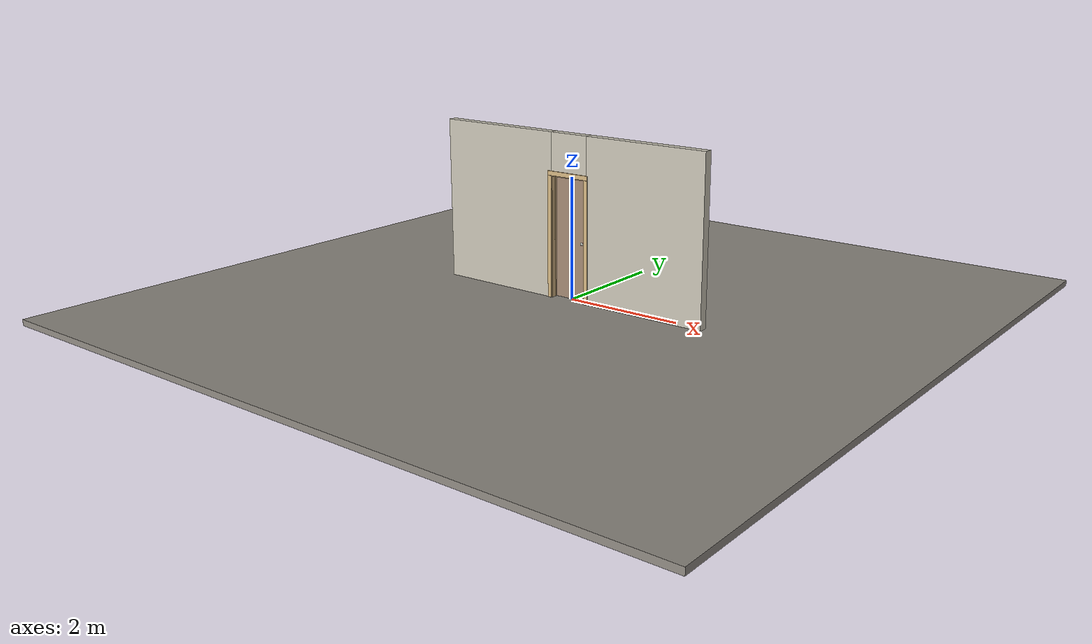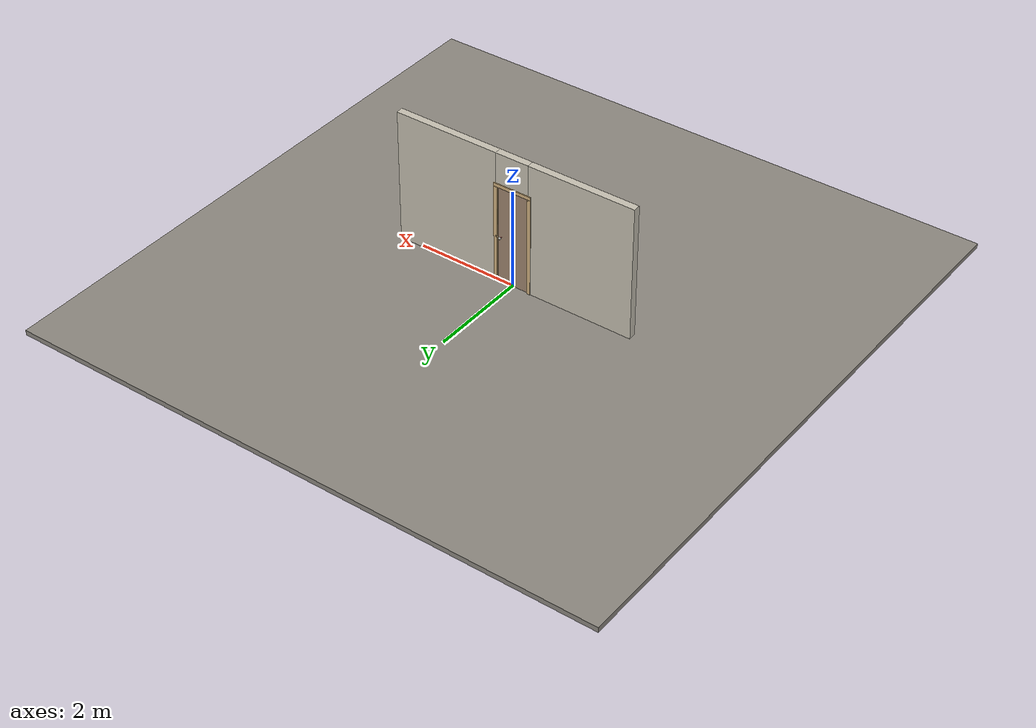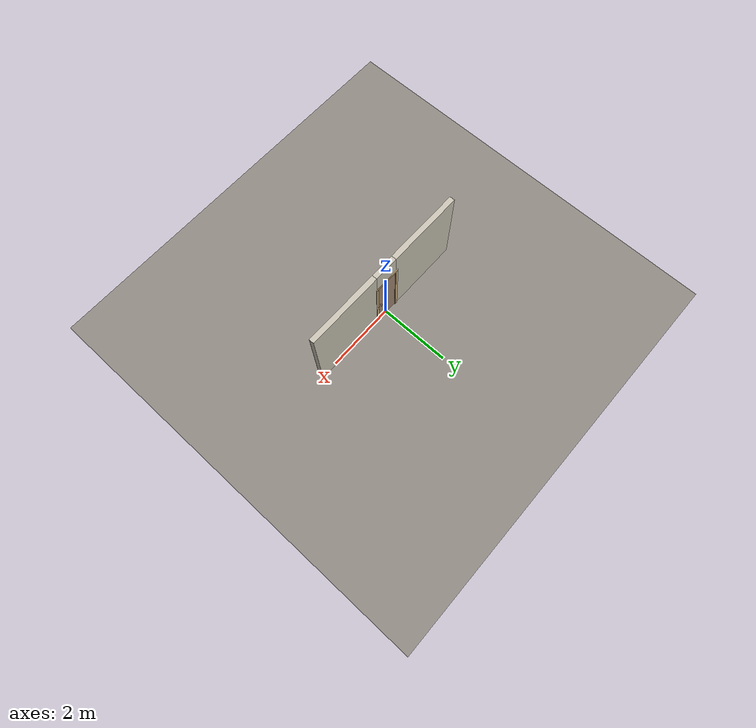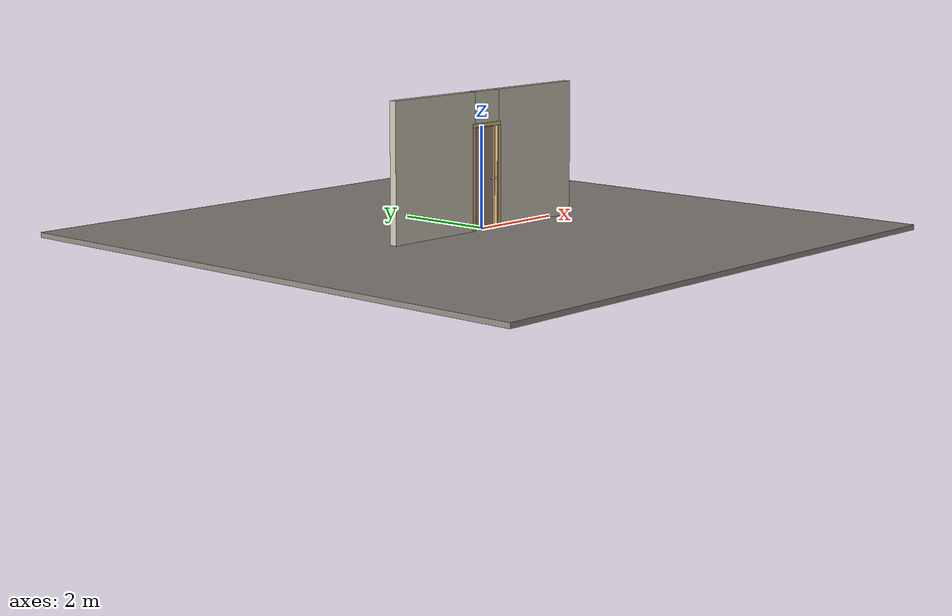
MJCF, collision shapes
<?xml version="1.0" ?>
<mujoco model="db0881_swing_single_full">
  <compiler angle="radian" meshdir="../../hardware" texturedir="../../textures" autolimits="true" inertiafromgeom="false"/>
  <option timestep="0.002" integrator="implicitfast" cone="elliptic" impratio="10" noslip_iterations="3">
    <flag multiccd="enable"/>
  </option>
  <size memory="16M"/>
  <default>
    <geom condim="4" solref="0.005 1" solimp="0.95 0.99 0.001"/>
    <joint solreflimit="0.005 1" solimplimit="0.95 0.99 0.001"/>
    <tendon solreflimit="0.005 1"/>
    <equality solref="0.002 1"/>
  </default>
  <visual>
    <headlight ambient="0.4 0.4 0.4" diffuse="0.7 0.7 0.7" specular="0.2 0.2 0.2"/>
    <quality shadowsize="4096"/>
    <map znear="0.01" zfar="60"/>
  </visual>
  <asset>
    <mesh name="hinge_e53abd72ad" file="hinge_e53abd72ad.obj"/>
    <mesh name="hinge_jamb_c17a76d68c" file="hinge_jamb_c17a76d68c.obj"/>
    <mesh name="knob_0ccd68d739" file="knob_0ccd68d739.obj"/>
    <material name="mat_floor" rgba="0.55 0.53 0.5 1" specular="0.2" shininess="0.15" reflectance="0"/>
    <material name="mat_wall" rgba="0.78 0.76 0.7 1" specular="0.2" shininess="0.1" reflectance="0"/>
    <material name="mat_leaf" rgba="0.625 0.525 0.44 1" specular="0.2" shininess="0.45" reflectance="0"/>
    <material name="mat_leaf_louver" rgba="0.531 0.446 0.374 1" specular="0.2" shininess="0.4" reflectance="0"/>
    <material name="mat_hinge" rgba="0.65 0.66 0.68 1" specular="0.74" shininess="0.5" reflectance="0.36"/>
    <material name="mat_op_hpl" rgba="0.75 0.75 0.72 1" specular="0.2" shininess="0.65" reflectance="0"/>
    <material name="mat_trim" rgba="0.85 0.66 0.3 1" specular="0.8" shininess="0.75" reflectance="0.4"/>
    <material name="mat_bolt" rgba="0.85 0.66 0.3 1" specular="0.8" shininess="0.75" reflectance="0.4"/>
    <material name="mat_frame" rgba="0.82 0.7 0.5 1" specular="0.2" shininess="0.45" reflectance="0"/>
    <texture name="skybox" type="skybox" builtin="gradient" rgb1="0.6 0.7 0.85" rgb2="0.9 0.92 0.95" width="256" height="256"/>
  </asset>
  <worldbody>
    <light name="sun" pos="1.5 -2.5 4" dir="-0.3 0.5 -0.8" directional="true" diffuse="0.8 0.8 0.8" specular="0.3 0.3 0.3" castshadow="true"/>
    <light name="fill" pos="-1.5 2.5 3" dir="0.3 -0.5 -0.7" directional="true" diffuse="0.35 0.35 0.4" castshadow="false"/>
    <camera name="robot_view" pos="0 -2.543625 1.698475" xyaxes="1 0 0 0 0.26963 0.962964" fovy="52"/>
    <camera name="far_view" pos="0 2.452625 1.698475" xyaxes="-1 0 0 0 -0.26963 0.962964" fovy="52"/>
    <camera name="iso" pos="1.898575 -2.143925 2.098175" xyaxes="0.741536 0.670913 0 -0.242917 0.268487 0.932151" fovy="46"/>
    <camera name="detail_handle" pos="0.424 -0.86625 1.245" xyaxes="0.97561 0.219512 0 -0.070934 0.315262 0.94635" fovy="38"/>
    <geom name="floor" type="box" size="6 6 0.05" pos="0 0 -0.05" material="mat_floor" group="0" contype="1" conaffinity="1" friction="0.8 0.005 0.0001" density="2400"/>
    <geom name="wall_left" type="box" size="1.086 0.0725 1.35" pos="-1.414 -0.0455 1.35" material="mat_wall" group="0" contype="1" conaffinity="1" friction="0.6 0.005 0.0001" density="800"/>
    <geom name="wall_right" type="box" size="1.071 0.0725 1.35" pos="1.429 -0.0455 1.35" material="mat_wall" group="0" contype="1" conaffinity="1" friction="0.6 0.005 0.0001" density="800"/>
    <geom name="wall_header" type="box" size="0.343 0.0725 0.3265" pos="0.015 -0.0455 2.3735" material="mat_wall" group="0" contype="1" conaffinity="1" friction="0.6 0.005 0.0001" density="800"/>
    <geom name="hinge_0_jamb" type="mesh" mesh="hinge_jamb_c17a76d68c" pos="-0.306 0.027 0.259" quat="0 1 0 0" material="mat_hinge" group="1" contype="0" conaffinity="0" density="7850"/>
    <geom name="hinge_1_jamb" type="mesh" mesh="hinge_jamb_c17a76d68c" pos="-0.306 0.027 1.0015" quat="0 1 0 0" material="mat_hinge" group="1" contype="0" conaffinity="0" density="7850"/>
    <geom name="hinge_2_jamb" type="mesh" mesh="hinge_jamb_c17a76d68c" pos="-0.306 0.027 1.814" quat="0 1 0 0" material="mat_hinge" group="1" contype="0" conaffinity="0" density="7850"/>
    <geom name="jamb_hinge" type="box" size="0.0095 0.0725 0.999" pos="-0.3185 -0.0455 0.999" material="mat_frame" group="0" contype="1" conaffinity="1" friction="0.6 0.005 0.0001" density="400"/>
    <geom name="strike_965_wall_n" type="box" size="0.0245 0.055075 0.0167" pos="0.3335 -0.062925 0.965" material="mat_frame" group="0" contype="1" conaffinity="1" friction="0.6 0.005 0.0001" density="400"/>
    <geom name="strike_965_wall_p" type="box" size="0.0245 0.008 0.0167" pos="0.3335 0.01585 0.965" material="mat_frame" group="0" contype="1" conaffinity="1" friction="0.6 0.005 0.0001" density="400"/>
    <geom name="strike_965_ramp" type="box" size="0.0245 0.01649 0.0167" pos="0.338136 0.028673 0.965" quat="0.977148 0 0 -0.212558" material="mat_frame" group="0" contype="1" conaffinity="1" friction="0.12 0.005 0.0001" density="400"/>
    <geom name="strike_965_back" type="box" size="0.01615 0.00785 0.0167" pos="0.34185 0 0.965" material="mat_frame" group="0" contype="1" conaffinity="1" friction="0.6 0.005 0.0001" density="400"/>
    <geom name="jamb_strike_0" type="box" size="0.0245 0.0725 0.47415" pos="0.3335 -0.0455 0.47415" material="mat_frame" group="0" contype="1" conaffinity="1" friction="0.6 0.005 0.0001" density="400"/>
    <geom name="jamb_strike_1" type="box" size="0.0245 0.0725 0.50815" pos="0.3335 -0.0455 1.48985" material="mat_frame" group="0" contype="1" conaffinity="1" friction="0.6 0.005 0.0001" density="400"/>
    <geom name="jamb_head" type="box" size="0.343 0.0725 0.0095" pos="0.015 -0.0455 2.0075" material="mat_frame" group="0" contype="1" conaffinity="1" friction="0.6 0.005 0.0001" density="400"/>
    <geom name="head_stud" type="box" size="0.343 0.0725 0.015" pos="0.015 -0.0455 2.032" material="mat_wall" group="0" contype="1" conaffinity="1" friction="0.6 0.005 0.0001" density="500"/>
    <geom name="stop_hinge" type="box" size="0.0055 0.016 0.999" pos="-0.3035 -0.0365 0.999" material="mat_frame" group="0" contype="1" conaffinity="1" friction="0.6 0.005 0.0001" density="400"/>
    <geom name="stop_strike" type="box" size="0.0055 0.016 0.999" pos="0.3035 -0.0365 0.999" material="mat_frame" group="0" contype="1" conaffinity="1" friction="0.6 0.005 0.0001" density="400"/>
    <geom name="stop_head" type="box" size="0.309 0.016 0.0055" pos="0 -0.0365 1.9925" material="mat_frame" group="0" contype="1" conaffinity="1" friction="0.6 0.005 0.0001" density="400"/>
    <geom name="casing_l_n" type="box" size="0.035 0.008 1.0085" pos="-0.358 -0.126 0.999" material="mat_frame" group="2" contype="0" conaffinity="0" density="400"/>
    <geom name="casing_r_n" type="box" size="0.035 0.008 1.0085" pos="0.358 -0.126 0.999" material="mat_frame" group="2" contype="0" conaffinity="0" density="400"/>
    <geom name="casing_h_n" type="box" size="0.393 0.008 0.035" pos="0 -0.126 2.047" material="mat_frame" group="2" contype="0" conaffinity="0" density="400"/>
    <geom name="casing_l_p" type="box" size="0.035 0.008 1.0085" pos="-0.358 0.035 0.999" material="mat_frame" group="2" contype="0" conaffinity="0" density="400"/>
    <geom name="casing_r_p" type="box" size="0.035 0.008 1.0085" pos="0.358 0.035 0.999" material="mat_frame" group="2" contype="0" conaffinity="0" density="400"/>
    <geom name="casing_h_p" type="box" size="0.393 0.008 0.035" pos="0 0.035 2.047" material="mat_frame" group="2" contype="0" conaffinity="0" density="400"/>
    <site name="approach_point" pos="0 -1.5 0" quat="1 0 0 0" size="0.05" rgba="0.2 0.9 0.2 0.5" group="4"/>
    <site name="goal_point" pos="0 1.5 0" quat="1 0 0 0" size="0.05" rgba="0.2 0.9 0.2 0.5" group="4"/>
    <site name="door_plane_center" pos="0 0 0.999" quat="1 0 0 0" size="0.02" rgba="0.2 0.9 0.2 0.5" group="4"/>
    <body name="leaf" pos="-0.309 0 0">
      <inertial pos="0.302825 0.000264 1.001895" mass="24.70134" quat="0.500516 0.499267 -0.500723 0.499492" diaginertia="0.796413331 8.142373528 8.931950058"/>
      <joint name="leaf_hinge" type="hinge" axis="0 0 1" pos="0.003 0.027 0" limited="true" range="0 1.745329" damping="0.099636" frictionloss="0.334629" armature="0.02"/>
      <geom name="leaf_slab" type="box" size="0.305 0.02 0.9925" pos="0.308 0 1.0015" material="mat_leaf" group="0" contype="1" conaffinity="1" friction="0.35 0.005 0.0001" density="1"/>
      <geom name="leaf_louver_0" type="box" size="0.215 0.002 0.026527" pos="0.308 0 0.252614" quat="0.953717 0.300706 0 0" material="mat_leaf_louver" group="1" contype="0" conaffinity="0" density="1"/>
      <geom name="leaf_louver_1" type="box" size="0.215 0.002 0.026527" pos="0.308 0 0.303141" quat="0.953717 0.300706 0 0" material="mat_leaf_louver" group="1" contype="0" conaffinity="0" density="1"/>
      <geom name="leaf_louver_2" type="box" size="0.215 0.002 0.026527" pos="0.308 0 0.353668" quat="0.953717 0.300706 0 0" material="mat_leaf_louver" group="1" contype="0" conaffinity="0" density="1"/>
      <geom name="leaf_louver_3" type="box" size="0.215 0.002 0.026527" pos="0.308 0 0.404195" quat="0.953717 0.300706 0 0" material="mat_leaf_louver" group="1" contype="0" conaffinity="0" density="1"/>
      <geom name="leaf_louver_4" type="box" size="0.215 0.002 0.026527" pos="0.308 0 0.454723" quat="0.953717 0.300706 0 0" material="mat_leaf_louver" group="1" contype="0" conaffinity="0" density="1"/>
      <geom name="leaf_louver_5" type="box" size="0.215 0.002 0.026527" pos="0.308 0 0.50525" quat="0.953717 0.300706 0 0" material="mat_leaf_louver" group="1" contype="0" conaffinity="0" density="1"/>
      <geom name="leaf_louver_6" type="box" size="0.215 0.002 0.026527" pos="0.308 0 0.555777" quat="0.953717 0.300706 0 0" material="mat_leaf_louver" group="1" contype="0" conaffinity="0" density="1"/>
      <geom name="leaf_louver_7" type="box" size="0.215 0.002 0.026527" pos="0.308 0 0.606305" quat="0.953717 0.300706 0 0" material="mat_leaf_louver" group="1" contype="0" conaffinity="0" density="1"/>
      <geom name="leaf_louver_8" type="box" size="0.215 0.002 0.026527" pos="0.308 0 0.656832" quat="0.953717 0.300706 0 0" material="mat_leaf_louver" group="1" contype="0" conaffinity="0" density="1"/>
      <geom name="leaf_louver_9" type="box" size="0.215 0.002 0.026527" pos="0.308 0 0.707359" quat="0.953717 0.300706 0 0" material="mat_leaf_louver" group="1" contype="0" conaffinity="0" density="1"/>
      <geom name="leaf_louver_10" type="box" size="0.215 0.002 0.026527" pos="0.308 0 0.757886" quat="0.953717 0.300706 0 0" material="mat_leaf_louver" group="1" contype="0" conaffinity="0" density="1"/>
      <geom name="leaf_louver_11" type="box" size="0.215 0.002 0.026527" pos="0.308 0 0.808414" quat="0.953717 0.300706 0 0" material="mat_leaf_louver" group="1" contype="0" conaffinity="0" density="1"/>
      <geom name="leaf_louver_12" type="box" size="0.215 0.002 0.026527" pos="0.308 0 0.858941" quat="0.953717 0.300706 0 0" material="mat_leaf_louver" group="1" contype="0" conaffinity="0" density="1"/>
      <geom name="leaf_louver_13" type="box" size="0.215 0.002 0.026527" pos="0.308 0 0.909468" quat="0.953717 0.300706 0 0" material="mat_leaf_louver" group="1" contype="0" conaffinity="0" density="1"/>
      <geom name="leaf_louver_14" type="box" size="0.215 0.002 0.026527" pos="0.308 0 0.959995" quat="0.953717 0.300706 0 0" material="mat_leaf_louver" group="1" contype="0" conaffinity="0" density="1"/>
      <geom name="leaf_louver_15" type="box" size="0.215 0.002 0.026527" pos="0.308 0 1.010523" quat="0.953717 0.300706 0 0" material="mat_leaf_louver" group="1" contype="0" conaffinity="0" density="1"/>
      <geom name="leaf_louver_16" type="box" size="0.215 0.002 0.026527" pos="0.308 0 1.06105" quat="0.953717 0.300706 0 0" material="mat_leaf_louver" group="1" contype="0" conaffinity="0" density="1"/>
      <geom name="leaf_louver_17" type="box" size="0.215 0.002 0.026527" pos="0.308 0 1.111577" quat="0.953717 0.300706 0 0" material="mat_leaf_louver" group="1" contype="0" conaffinity="0" density="1"/>
      <geom name="leaf_louver_18" type="box" size="0.215 0.002 0.026527" pos="0.308 0 1.162105" quat="0.953717 0.300706 0 0" material="mat_leaf_louver" group="1" contype="0" conaffinity="0" density="1"/>
      <geom name="leaf_louver_19" type="box" size="0.215 0.002 0.026527" pos="0.308 0 1.212632" quat="0.953717 0.300706 0 0" material="mat_leaf_louver" group="1" contype="0" conaffinity="0" density="1"/>
      <geom name="leaf_louver_20" type="box" size="0.215 0.002 0.026527" pos="0.308 0 1.263159" quat="0.953717 0.300706 0 0" material="mat_leaf_louver" group="1" contype="0" conaffinity="0" density="1"/>
      <geom name="leaf_louver_21" type="box" size="0.215 0.002 0.026527" pos="0.308 0 1.313686" quat="0.953717 0.300706 0 0" material="mat_leaf_louver" group="1" contype="0" conaffinity="0" density="1"/>
      <geom name="leaf_louver_22" type="box" size="0.215 0.002 0.026527" pos="0.308 0 1.364214" quat="0.953717 0.300706 0 0" material="mat_leaf_louver" group="1" contype="0" conaffinity="0" density="1"/>
      <geom name="leaf_louver_23" type="box" size="0.215 0.002 0.026527" pos="0.308 0 1.414741" quat="0.953717 0.300706 0 0" material="mat_leaf_louver" group="1" contype="0" conaffinity="0" density="1"/>
      <geom name="leaf_louver_24" type="box" size="0.215 0.002 0.026527" pos="0.308 0 1.465268" quat="0.953717 0.300706 0 0" material="mat_leaf_louver" group="1" contype="0" conaffinity="0" density="1"/>
      <geom name="leaf_louver_25" type="box" size="0.215 0.002 0.026527" pos="0.308 0 1.515795" quat="0.953717 0.300706 0 0" material="mat_leaf_louver" group="1" contype="0" conaffinity="0" density="1"/>
      <geom name="leaf_louver_26" type="box" size="0.215 0.002 0.026527" pos="0.308 0 1.566323" quat="0.953717 0.300706 0 0" material="mat_leaf_louver" group="1" contype="0" conaffinity="0" density="1"/>
      <geom name="leaf_louver_27" type="box" size="0.215 0.002 0.026527" pos="0.308 0 1.61685" quat="0.953717 0.300706 0 0" material="mat_leaf_louver" group="1" contype="0" conaffinity="0" density="1"/>
      <geom name="leaf_louver_28" type="box" size="0.215 0.002 0.026527" pos="0.308 0 1.667377" quat="0.953717 0.300706 0 0" material="mat_leaf_louver" group="1" contype="0" conaffinity="0" density="1"/>
      <geom name="leaf_louver_29" type="box" size="0.215 0.002 0.026527" pos="0.308 0 1.717905" quat="0.953717 0.300706 0 0" material="mat_leaf_louver" group="1" contype="0" conaffinity="0" density="1"/>
      <geom name="leaf_louver_30" type="box" size="0.215 0.002 0.026527" pos="0.308 0 1.768432" quat="0.953717 0.300706 0 0" material="mat_leaf_louver" group="1" contype="0" conaffinity="0" density="1"/>
      <geom name="leaf_louver_31" type="box" size="0.215 0.002 0.026527" pos="0.308 0 1.818959" quat="0.953717 0.300706 0 0" material="mat_leaf_louver" group="1" contype="0" conaffinity="0" density="1"/>
      <geom name="leaf_louver_32" type="box" size="0.215 0.002 0.026527" pos="0.308 0 1.869486" quat="0.953717 0.300706 0 0" material="mat_leaf_louver" group="1" contype="0" conaffinity="0" density="1"/>
      <geom name="hinge_0" type="mesh" mesh="hinge_e53abd72ad" pos="0.003 0.027 0.259" quat="0 1 0 0" material="mat_hinge" group="1" contype="0" conaffinity="0" density="7850"/>
      <geom name="hinge_1" type="mesh" mesh="hinge_e53abd72ad" pos="0.003 0.027 1.0015" quat="0 1 0 0" material="mat_hinge" group="1" contype="0" conaffinity="0" density="7850"/>
      <geom name="hinge_2" type="mesh" mesh="hinge_e53abd72ad" pos="0.003 0.027 1.814" quat="0 1 0 0" material="mat_hinge" group="1" contype="0" conaffinity="0" density="7850"/>
      <geom name="leaf_latch_bolt_faceplate" type="box" size="0.0006 0.01235 0.0267" pos="0.6124 0 0.965" material="mat_bolt" group="1" contype="0" conaffinity="0" density="8500"/>
      <site name="leaf_edge_mid" pos="0.613 0 0.9925" quat="1 0 0 0" size="0.02" rgba="0.2 0.9 0.2 0.5" group="4"/>
      <body name="leaf_handle" pos="0.553 0 0.965">
        <inertial pos="0 0 0" mass="1.15452" quat="0.5 0.5 0.5 0.5" diaginertia="0.000298738 0.004154329 0.004154329"/>
        <joint name="leaf_handle_hinge" type="hinge" axis="0 -1 0" limited="true" range="0 0.85" damping="0.128367" frictionloss="0.032" stiffness="0.4" springref="-0.5" armature="0.01"/>
        <geom name="leaf_handle_spindle" type="cylinder" size="0.006 0.028" pos="0 0 0" quat="0.707107 -0.707107 0 0" material="mat_op_hpl" group="1" contype="0" conaffinity="0" density="7850"/>
        <geom name="leaf_handle_knob_n" type="mesh" mesh="knob_0ccd68d739" pos="0 -0.02 0" quat="0.707107 0.707107 0 0" material="mat_op_hpl" group="1" contype="0" conaffinity="0" density="3000"/>
        <geom name="leaf_handle_knob_col_n" type="sphere" size="0.02475" pos="0 -0.06625 0" material="mat_op_hpl" group="0" contype="1" conaffinity="1" friction="0.9 0.01 0.0001" density="3000"/>
        <geom name="leaf_handle_knob_neck_n" type="cylinder" size="0.011 0.012" pos="0 -0.032 0" quat="0.707107 -0.707107 0 0" material="mat_op_hpl" group="3" contype="1" conaffinity="1" rgba="0.8 0.3 0.3 0.25" friction="0.6 0.005 0.0001" density="3000"/>
        <geom name="leaf_handle_knob_p" type="mesh" mesh="knob_0ccd68d739" pos="0 0.02 0" quat="-0.707107 0.707107 0 0" material="mat_op_hpl" group="1" contype="0" conaffinity="0" density="3000"/>
        <geom name="leaf_handle_knob_col_p" type="sphere" size="0.02475" pos="0 0.06625 0" material="mat_op_hpl" group="0" contype="1" conaffinity="1" friction="0.9 0.01 0.0001" density="3000"/>
        <geom name="leaf_handle_knob_neck_p" type="cylinder" size="0.011 0.012" pos="0 0.032 0" quat="0.707107 -0.707107 0 0" material="mat_op_hpl" group="3" contype="1" conaffinity="1" rgba="0.8 0.3 0.3 0.25" friction="0.6 0.005 0.0001" density="3000"/>
        <site name="leaf_handle_grip_n" pos="0 -0.06625 0" quat="1 0 0 0" size="0.012" rgba="0.2 0.9 0.2 0.5" group="4"/>
        <site name="leaf_handle_grip_p" pos="0 0.06625 0" quat="1 0 0 0" size="0.012" rgba="0.2 0.9 0.2 0.5" group="4"/>
      </body>
      <body name="leaf_latch_bolt" pos="0.613 0 0.965">
        <inertial pos="-0.00865 0 0" mass="0.041419" quat="0.92388 -0.382683 0 0" diaginertia="0.000000798 0.000005598 0.000005598"/>
        <joint name="leaf_latch_bolt_slide" type="slide" axis="-1 0 0" limited="true" range="0 0.0127" damping="2" frictionloss="0.3" stiffness="300" springref="-0.008333" armature="0.1"/>
        <geom name="leaf_latch_bolt_capsule" type="capsule" size="0.00635 0.015" pos="-0.00865 0 0" quat="0.707107 0 0.707107 0" material="mat_bolt" group="0" contype="1" conaffinity="1" friction="0.2 0.005 0.0001" density="8500"/>
      </body>
    </body>
  </worldbody>
  <tendon>
    <fixed name="leaf_latch_bolt_coupling" limited="true" range="0 10">
      <joint joint="leaf_latch_bolt_slide" coef="1"/>
      <joint joint="leaf_handle_hinge" coef="-0.016933"/>
    </fixed>
  </tendon>
  <sensor>
    <jointpos name="leaf_hinge_pos" joint="leaf_hinge"/>
    <jointvel name="leaf_hinge_vel" joint="leaf_hinge"/>
    <jointpos name="leaf_handle_hinge_pos" joint="leaf_handle_hinge"/>
    <jointvel name="leaf_handle_hinge_vel" joint="leaf_handle_hinge"/>
    <jointpos name="leaf_latch_bolt_slide_pos" joint="leaf_latch_bolt_slide"/>
    <jointvel name="leaf_latch_bolt_slide_vel" joint="leaf_latch_bolt_slide"/>
  </sensor>
</mujoco>
